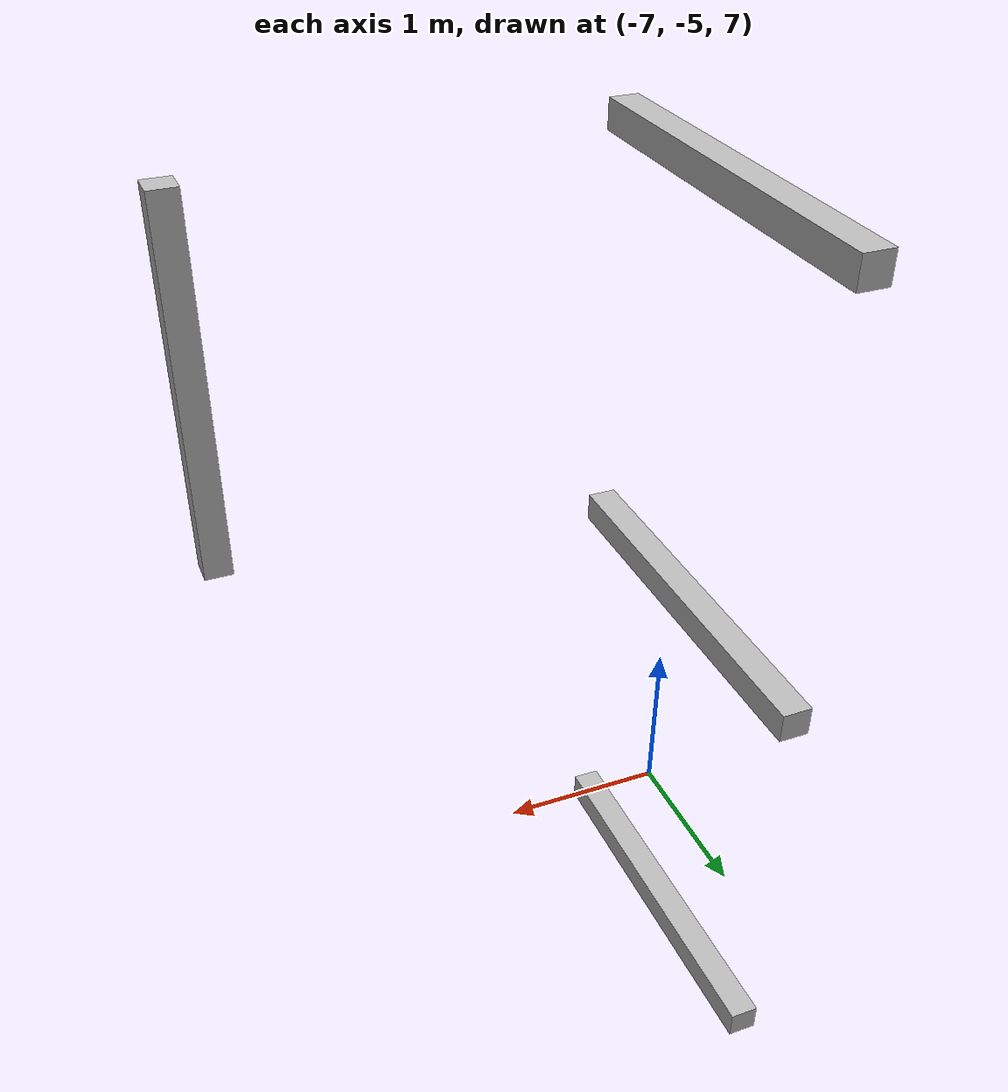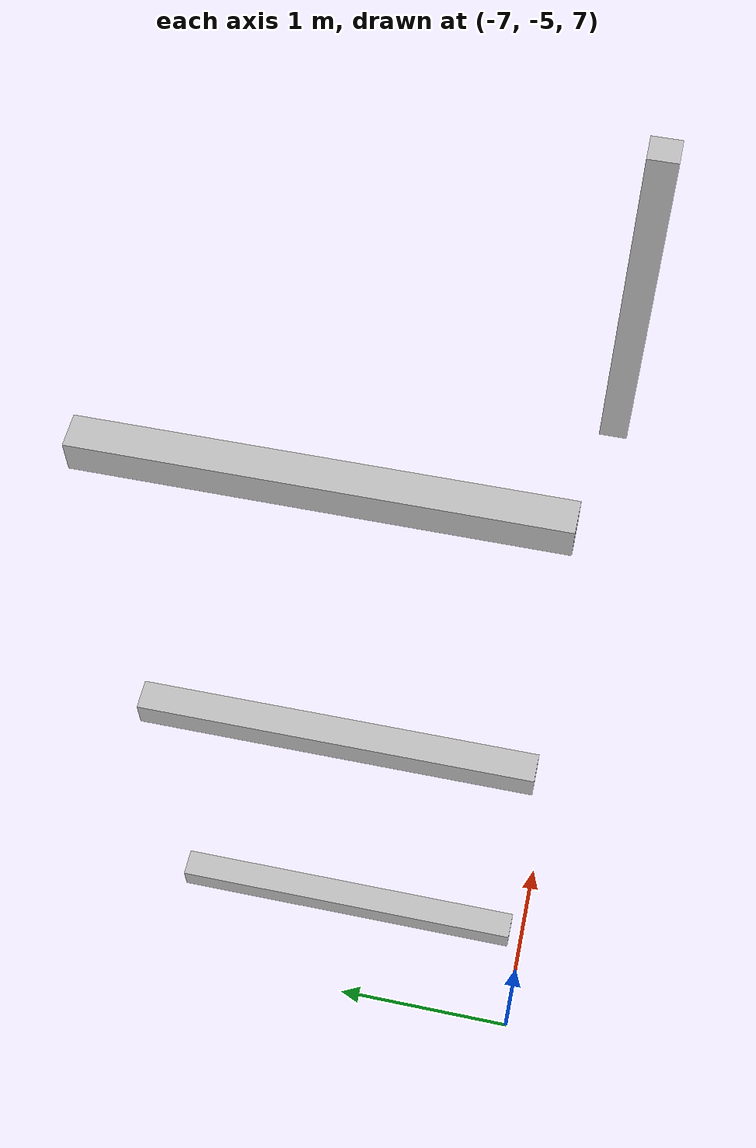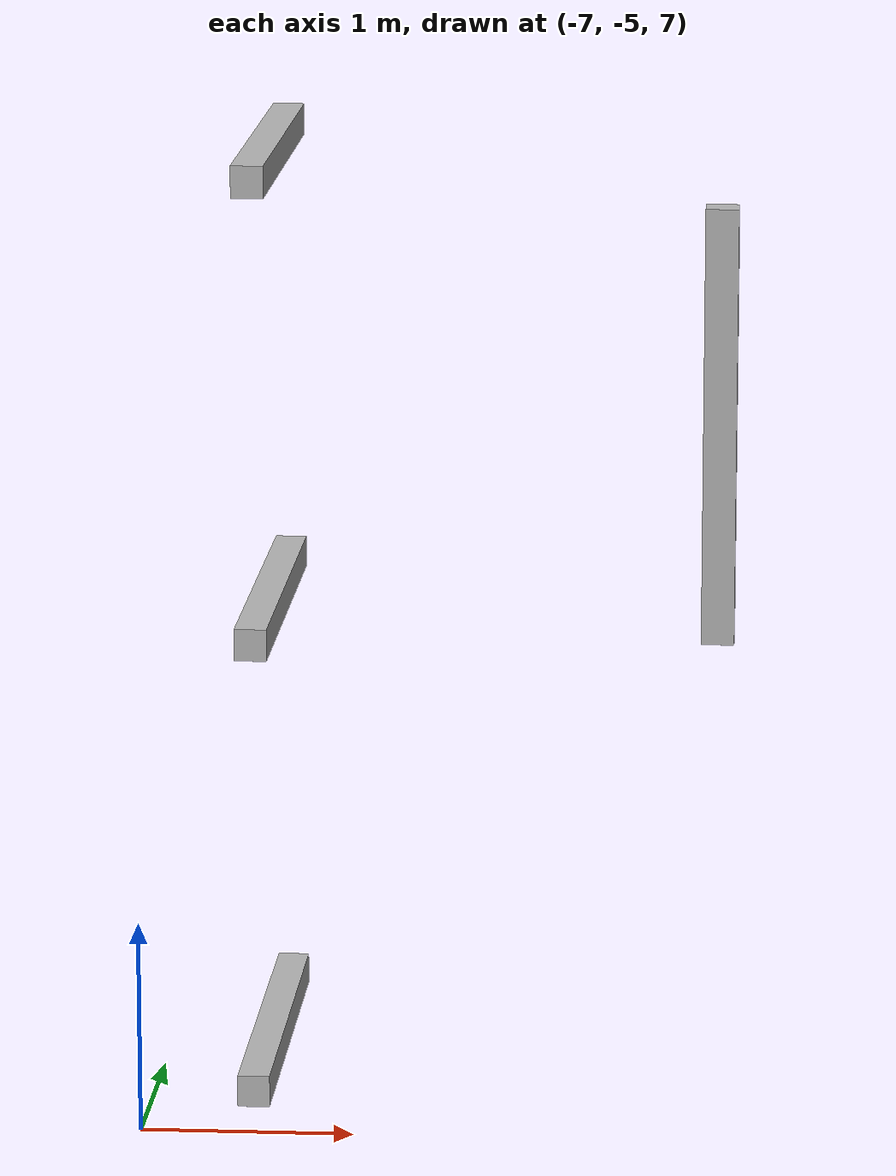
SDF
<sdf version="1.7">
 <world name="default">
  <model name="orthogonal_747_2.000.15_TS">
   <static>1</static>
   <link name="y_link_4_0_0">
    <inertial>
     <mass>1</mass>
     <inertia>
      <ixx>0.166667</ixx>
      <ixy>0</ixy>
      <ixz>0</ixz>
      <iyy>0.166667</iyy>
      <iyz>0</iyz>
      <izz>0.166667</izz>
     </inertia>
    </inertial>
    <pose>0 1.075 9.675 0 -0 0</pose>
    <visual name="visual_0">
     <laser_retro>3466</laser_retro>
     <geometry><box><size>0.15 1e-06 0.15</size></box></geometry>
     <material>
      <script><name>Gazebo/Grey</name><uri>file://media/materials/scripts/gazebo.material</uri></script>
      <shader type="pixel"><normal_map>__default__</normal_map></shader>
      <ambient>0.678 0.498 0.659 1</ambient>
      <diffuse>0.7 0.7 0.7 1</diffuse>
      <specular>0.01 0.01 0.01 1</specular>
      <emissive>0 0 0 1</emissive>
     </material>
     <pose>0 -1 0 0 -0 0</pose>
     <transparency>1</transparency>
    </visual>
    <visual name="visual_1">
     <laser_retro>3467</laser_retro>
     <geometry><box><size>0.15 1e-06 0.15</size></box></geometry>
     <material>
      <script><name>Gazebo/Grey</name><uri>file://media/materials/scripts/gazebo.material</uri></script>
      <shader type="pixel"><normal_map>__default__</normal_map></shader>
      <ambient>0.447 0.624 0.812 1</ambient>
      <diffuse>0.7 0.7 0.7 1</diffuse>
      <specular>0.01 0.01 0.01 1</specular>
      <emissive>0 0 0 1</emissive>
     </material>
     <pose>0 1 0 0 -0 0</pose>
     <transparency>1</transparency>
    </visual>
    <visual name="visual_2">
     <laser_retro>3468</laser_retro>
     <geometry><box><size>0.15 2 1e-06</size></box></geometry>
     <material>
      <script><name>Gazebo/Grey</name><uri>file://media/materials/scripts/gazebo.material</uri></script>
      <shader type="pixel"><normal_map>__default__</normal_map></shader>
      <ambient>0.988 0.686 0.243 1</ambient>
      <diffuse>0.7 0.7 0.7 1</diffuse>
      <specular>0.01 0.01 0.01 1</specular>
      <emissive>0 0 0 1</emissive>
     </material>
     <pose>0 0 -0.075 0 -0 0</pose>
     <transparency>1</transparency>
    </visual>
    <visual name="visual_3">
     <laser_retro>3469</laser_retro>
     <geometry><box><size>1e-06 2 0.15</size></box></geometry>
     <material>
      <script><name>Gazebo/Grey</name><uri>file://media/materials/scripts/gazebo.material</uri></script>
      <shader type="pixel"><normal_map>__default__</normal_map></shader>
      <ambient>0.988 0.914 0.31 1</ambient>
      <diffuse>0.7 0.7 0.7 1</diffuse>
      <specular>0.01 0.01 0.01 1</specular>
      <emissive>0 0 0 1</emissive>
     </material>
     <pose>0.075 0 0 0 -0 0</pose>
     <transparency>1</transparency>
    </visual>
    <visual name="visual_4">
     <laser_retro>3470</laser_retro>
     <geometry><box><size>0.15 2 1e-06</size></box></geometry>
     <material>
      <script><name>Gazebo/Grey</name><uri>file://media/materials/scripts/gazebo.material</uri></script>
      <shader type="pixel"><normal_map>__default__</normal_map></shader>
      <ambient>0.937 0.161 0.161 1</ambient>
      <diffuse>0.7 0.7 0.7 1</diffuse>
      <specular>0.01 0.01 0.01 1</specular>
      <emissive>0 0 0 1</emissive>
     </material>
     <pose>0 0 0.075 0 -0 0</pose>
     <transparency>1</transparency>
    </visual>
    <visual name="visual_5">
     <laser_retro>3471</laser_retro>
     <geometry><box><size>1e-06 2 0.15</size></box></geometry>
     <material>
      <script><name>Gazebo/Grey</name><uri>file://media/materials/scripts/gazebo.material</uri></script>
      <shader type="pixel"><normal_map>__default__</normal_map></shader>
      <ambient>0.541 0.886 0.204 1</ambient>
      <diffuse>0.7 0.7 0.7 1</diffuse>
      <specular>0.01 0.01 0.01 1</specular>
      <emissive>0 0 0 1</emissive>
     </material>
     <pose>-0.075 0 0 0 -0 0</pose>
     <transparency>1</transparency>
    </visual>
    <visual name="visual_texture">
     <geometry><box><size>0.149985 1.9998 0.149985</size></box></geometry>
     <material>
      <script>
       <uri>model://BASE_MODELS/simple_block_v2_textured/materials/scripts</uri>
       <uri>model://BASE_MODELS/simple_block_v2_textured/materials/textures</uri>
       <name>metal</name>
      </script>
     </material>
     <laser_retro>3472</laser_retro>
    </visual>
    <collision name="collision">
     <geometry><box><size>0.15 2 0.15</size></box></geometry>
     <surface>
      <friction>
       <ode><mu>1</mu><mu2>1</mu2><fdir1>0 0 0</fdir1><slip1>0</slip1><slip2>0</slip2></ode>
       <torsional>
        <coefficient>1</coefficient>
        <patch_radius>0</patch_radius>
        <surface_radius>0</surface_radius>
        <use_patch_radius>1</use_patch_radius>
        <ode><slip>0</slip></ode>
       </torsional>
      </friction>
      <bounce><restitution_coefficient>0</restitution_coefficient><threshold>1e+06</threshold></bounce>
      <contact>
       <collide_without_contact>0</collide_without_contact>
       <collide_without_contact_bitmask>1</collide_without_contact_bitmask>
       <collide_bitmask>1</collide_bitmask>
       <ode>
        <soft_cfm>0</soft_cfm>
        <soft_erp>0.2</soft_erp>
        <kp>1e+13</kp>
        <kd>1</kd>
        <max_vel>0.01</max_vel>
        <min_depth>0</min_depth>
       </ode>
       <bullet>
        <split_impulse>1</split_impulse>
        <split_impulse_penetration_threshold>-0.01</split_impulse_penetration_threshold>
        <soft_cfm>0</soft_cfm>
        <soft_erp>0.2</soft_erp>
        <kp>1e+13</kp>
        <kd>1</kd>
       </bullet>
      </contact>
     </surface>
    </collision>
   </link>
   <link name="y_link_5_0_0">
    <inertial>
     <mass>1</mass>
     <inertia>
      <ixx>0.166667</ixx>
      <ixy>0</ixy>
      <ixz>0</ixz>
      <iyy>0.166667</iyy>
      <iyz>0</iyz>
      <izz>0.166667</izz>
     </inertia>
    </inertial>
    <pose>0 1.075 11.825 0 -0 0</pose>
    <visual name="visual_0">
     <laser_retro>4369</laser_retro>
     <geometry><box><size>0.15 1e-06 0.15</size></box></geometry>
     <material>
      <script><name>Gazebo/Grey</name><uri>file://media/materials/scripts/gazebo.material</uri></script>
      <shader type="pixel"><normal_map>__default__</normal_map></shader>
      <ambient>0.678 0.498 0.659 1</ambient>
      <diffuse>0.7 0.7 0.7 1</diffuse>
      <specular>0.01 0.01 0.01 1</specular>
      <emissive>0 0 0 1</emissive>
     </material>
     <pose>0 -1 0 0 -0 0</pose>
     <transparency>1</transparency>
    </visual>
    <visual name="visual_1">
     <laser_retro>4370</laser_retro>
     <geometry><box><size>0.15 1e-06 0.15</size></box></geometry>
     <material>
      <script><name>Gazebo/Grey</name><uri>file://media/materials/scripts/gazebo.material</uri></script>
      <shader type="pixel"><normal_map>__default__</normal_map></shader>
      <ambient>0.447 0.624 0.812 1</ambient>
      <diffuse>0.7 0.7 0.7 1</diffuse>
      <specular>0.01 0.01 0.01 1</specular>
      <emissive>0 0 0 1</emissive>
     </material>
     <pose>0 1 0 0 -0 0</pose>
     <transparency>1</transparency>
    </visual>
    <visual name="visual_2">
     <laser_retro>4371</laser_retro>
     <geometry><box><size>0.15 2 1e-06</size></box></geometry>
     <material>
      <script><name>Gazebo/Grey</name><uri>file://media/materials/scripts/gazebo.material</uri></script>
      <shader type="pixel"><normal_map>__default__</normal_map></shader>
      <ambient>0.988 0.686 0.243 1</ambient>
      <diffuse>0.7 0.7 0.7 1</diffuse>
      <specular>0.01 0.01 0.01 1</specular>
      <emissive>0 0 0 1</emissive>
     </material>
     <pose>0 0 -0.075 0 -0 0</pose>
     <transparency>1</transparency>
    </visual>
    <visual name="visual_3">
     <laser_retro>4372</laser_retro>
     <geometry><box><size>1e-06 2 0.15</size></box></geometry>
     <material>
      <script><name>Gazebo/Grey</name><uri>file://media/materials/scripts/gazebo.material</uri></script>
      <shader type="pixel"><normal_map>__default__</normal_map></shader>
      <ambient>0.988 0.914 0.31 1</ambient>
      <diffuse>0.7 0.7 0.7 1</diffuse>
      <specular>0.01 0.01 0.01 1</specular>
      <emissive>0 0 0 1</emissive>
     </material>
     <pose>0.075 0 0 0 -0 0</pose>
     <transparency>1</transparency>
    </visual>
    <visual name="visual_4">
     <laser_retro>4373</laser_retro>
     <geometry><box><size>0.15 2 1e-06</size></box></geometry>
     <material>
      <script><name>Gazebo/Grey</name><uri>file://media/materials/scripts/gazebo.material</uri></script>
      <shader type="pixel"><normal_map>__default__</normal_map></shader>
      <ambient>0.937 0.161 0.161 1</ambient>
      <diffuse>0.7 0.7 0.7 1</diffuse>
      <specular>0.01 0.01 0.01 1</specular>
      <emissive>0 0 0 1</emissive>
     </material>
     <pose>0 0 0.075 0 -0 0</pose>
     <transparency>1</transparency>
    </visual>
    <visual name="visual_5">
     <laser_retro>4374</laser_retro>
     <geometry><box><size>1e-06 2 0.15</size></box></geometry>
     <material>
      <script><name>Gazebo/Grey</name><uri>file://media/materials/scripts/gazebo.material</uri></script>
      <shader type="pixel"><normal_map>__default__</normal_map></shader>
      <ambient>0.541 0.886 0.204 1</ambient>
      <diffuse>0.7 0.7 0.7 1</diffuse>
      <specular>0.01 0.01 0.01 1</specular>
      <emissive>0 0 0 1</emissive>
     </material>
     <pose>-0.075 0 0 0 -0 0</pose>
     <transparency>1</transparency>
    </visual>
    <visual name="visual_texture">
     <geometry><box><size>0.149985 1.9998 0.149985</size></box></geometry>
     <material>
      <script>
       <uri>model://BASE_MODELS/simple_block_v2_textured/materials/scripts</uri>
       <uri>model://BASE_MODELS/simple_block_v2_textured/materials/textures</uri>
       <name>metal</name>
      </script>
     </material>
     <laser_retro>4375</laser_retro>
    </visual>
    <collision name="collision">
     <geometry><box><size>0.15 2 0.15</size></box></geometry>
     <surface>
      <friction>
       <ode><mu>1</mu><mu2>1</mu2><fdir1>0 0 0</fdir1><slip1>0</slip1><slip2>0</slip2></ode>
       <torsional>
        <coefficient>1</coefficient>
        <patch_radius>0</patch_radius>
        <surface_radius>0</surface_radius>
        <use_patch_radius>1</use_patch_radius>
        <ode><slip>0</slip></ode>
       </torsional>
      </friction>
      <bounce><restitution_coefficient>0</restitution_coefficient><threshold>1e+06</threshold></bounce>
      <contact>
       <collide_without_contact>0</collide_without_contact>
       <collide_without_contact_bitmask>1</collide_without_contact_bitmask>
       <collide_bitmask>1</collide_bitmask>
       <ode>
        <soft_cfm>0</soft_cfm>
        <soft_erp>0.2</soft_erp>
        <kp>1e+13</kp>
        <kd>1</kd>
        <max_vel>0.01</max_vel>
        <min_depth>0</min_depth>
       </ode>
       <bullet>
        <split_impulse>1</split_impulse>
        <split_impulse_penetration_threshold>-0.01</split_impulse_penetration_threshold>
        <soft_cfm>0</soft_cfm>
        <soft_erp>0.2</soft_erp>
        <kp>1e+13</kp>
        <kd>1</kd>
       </bullet>
      </contact>
     </surface>
    </collision>
   </link>
   <link name="y_link_6_0_0">
    <inertial>
     <mass>1</mass>
     <inertia>
      <ixx>0.166667</ixx>
      <ixy>0</ixy>
      <ixz>0</ixz>
      <iyy>0.166667</iyy>
      <iyz>0</iyz>
      <izz>0.166667</izz>
     </inertia>
    </inertial>
    <pose>0 1.075 13.975 0 -0 0</pose>
    <visual name="visual_0">
     <laser_retro>5272</laser_retro>
     <geometry><box><size>0.15 1e-06 0.15</size></box></geometry>
     <material>
      <script><name>Gazebo/Grey</name><uri>file://media/materials/scripts/gazebo.material</uri></script>
      <shader type="pixel"><normal_map>__default__</normal_map></shader>
      <ambient>0.678 0.498 0.659 1</ambient>
      <diffuse>0.7 0.7 0.7 1</diffuse>
      <specular>0.01 0.01 0.01 1</specular>
      <emissive>0 0 0 1</emissive>
     </material>
     <pose>0 -1 0 0 -0 0</pose>
     <transparency>1</transparency>
    </visual>
    <visual name="visual_1">
     <laser_retro>5273</laser_retro>
     <geometry><box><size>0.15 1e-06 0.15</size></box></geometry>
     <material>
      <script><name>Gazebo/Grey</name><uri>file://media/materials/scripts/gazebo.material</uri></script>
      <shader type="pixel"><normal_map>__default__</normal_map></shader>
      <ambient>0.447 0.624 0.812 1</ambient>
      <diffuse>0.7 0.7 0.7 1</diffuse>
      <specular>0.01 0.01 0.01 1</specular>
      <emissive>0 0 0 1</emissive>
     </material>
     <pose>0 1 0 0 -0 0</pose>
     <transparency>1</transparency>
    </visual>
    <visual name="visual_2">
     <laser_retro>5274</laser_retro>
     <geometry><box><size>0.15 2 1e-06</size></box></geometry>
     <material>
      <script><name>Gazebo/Grey</name><uri>file://media/materials/scripts/gazebo.material</uri></script>
      <shader type="pixel"><normal_map>__default__</normal_map></shader>
      <ambient>0.988 0.686 0.243 1</ambient>
      <diffuse>0.7 0.7 0.7 1</diffuse>
      <specular>0.01 0.01 0.01 1</specular>
      <emissive>0 0 0 1</emissive>
     </material>
     <pose>0 0 -0.075 0 -0 0</pose>
     <transparency>1</transparency>
    </visual>
    <visual name="visual_3">
     <laser_retro>5275</laser_retro>
     <geometry><box><size>1e-06 2 0.15</size></box></geometry>
     <material>
      <script><name>Gazebo/Grey</name><uri>file://media/materials/scripts/gazebo.material</uri></script>
      <shader type="pixel"><normal_map>__default__</normal_map></shader>
      <ambient>0.988 0.914 0.31 1</ambient>
      <diffuse>0.7 0.7 0.7 1</diffuse>
      <specular>0.01 0.01 0.01 1</specular>
      <emissive>0 0 0 1</emissive>
     </material>
     <pose>0.075 0 0 0 -0 0</pose>
     <transparency>1</transparency>
    </visual>
    <visual name="visual_4">
     <laser_retro>5276</laser_retro>
     <geometry><box><size>0.15 2 1e-06</size></box></geometry>
     <material>
      <script><name>Gazebo/Grey</name><uri>file://media/materials/scripts/gazebo.material</uri></script>
      <shader type="pixel"><normal_map>__default__</normal_map></shader>
      <ambient>0.937 0.161 0.161 1</ambient>
      <diffuse>0.7 0.7 0.7 1</diffuse>
      <specular>0.01 0.01 0.01 1</specular>
      <emissive>0 0 0 1</emissive>
     </material>
     <pose>0 0 0.075 0 -0 0</pose>
     <transparency>1</transparency>
    </visual>
    <visual name="visual_5">
     <laser_retro>5277</laser_retro>
     <geometry><box><size>1e-06 2 0.15</size></box></geometry>
     <material>
      <script><name>Gazebo/Grey</name><uri>file://media/materials/scripts/gazebo.material</uri></script>
      <shader type="pixel"><normal_map>__default__</normal_map></shader>
      <ambient>0.541 0.886 0.204 1</ambient>
      <diffuse>0.7 0.7 0.7 1</diffuse>
      <specular>0.01 0.01 0.01 1</specular>
      <emissive>0 0 0 1</emissive>
     </material>
     <pose>-0.075 0 0 0 -0 0</pose>
     <transparency>1</transparency>
    </visual>
    <visual name="visual_texture">
     <geometry><box><size>0.149985 1.9998 0.149985</size></box></geometry>
     <material>
      <script>
       <uri>model://BASE_MODELS/simple_block_v2_textured/materials/scripts</uri>
       <uri>model://BASE_MODELS/simple_block_v2_textured/materials/textures</uri>
       <name>metal</name>
      </script>
     </material>
     <laser_retro>5278</laser_retro>
    </visual>
    <collision name="collision">
     <geometry><box><size>0.15 2 0.15</size></box></geometry>
     <surface>
      <friction>
       <ode><mu>1</mu><mu2>1</mu2><fdir1>0 0 0</fdir1><slip1>0</slip1><slip2>0</slip2></ode>
       <torsional>
        <coefficient>1</coefficient>
        <patch_radius>0</patch_radius>
        <surface_radius>0</surface_radius>
        <use_patch_radius>1</use_patch_radius>
        <ode><slip>0</slip></ode>
       </torsional>
      </friction>
      <bounce><restitution_coefficient>0</restitution_coefficient><threshold>1e+06</threshold></bounce>
      <contact>
       <collide_without_contact>0</collide_without_contact>
       <collide_without_contact_bitmask>1</collide_without_contact_bitmask>
       <collide_bitmask>1</collide_bitmask>
       <ode>
        <soft_cfm>0</soft_cfm>
        <soft_erp>0.2</soft_erp>
        <kp>1e+13</kp>
        <kd>1</kd>
        <max_vel>0.01</max_vel>
        <min_depth>0</min_depth>
       </ode>
       <bullet>
        <split_impulse>1</split_impulse>
        <split_impulse_penetration_threshold>-0.01</split_impulse_penetration_threshold>
        <soft_cfm>0</soft_cfm>
        <soft_erp>0.2</soft_erp>
        <kp>1e+13</kp>
        <kd>1</kd>
       </bullet>
      </contact>
     </surface>
    </collision>
   </link>
   <link name="z_link_6_0_1">
    <inertial>
     <mass>1</mass>
     <inertia>
      <ixx>0.166667</ixx>
      <ixy>0</ixy>
      <ixz>0</ixz>
      <iyy>0.166667</iyy>
      <iyz>0</iyz>
      <izz>0.166667</izz>
     </inertia>
    </inertial>
    <pose>2.15 0 12.9 0 -0 0</pose>
    <visual name="visual_0">
     <laser_retro>5314</laser_retro>
     <geometry><box><size>0.15 1e-06 2</size></box></geometry>
     <material>
      <script><name>Gazebo/Grey</name><uri>file://media/materials/scripts/gazebo.material</uri></script>
      <shader type="pixel"><normal_map>__default__</normal_map></shader>
      <ambient>0.678 0.498 0.659 1</ambient>
      <diffuse>0.7 0.7 0.7 1</diffuse>
      <specular>0.01 0.01 0.01 1</specular>
      <emissive>0 0 0 1</emissive>
     </material>
     <pose>0 -0.075 0 0 -0 0</pose>
     <transparency>1</transparency>
    </visual>
    <visual name="visual_1">
     <laser_retro>5315</laser_retro>
     <geometry><box><size>0.15 1e-06 2</size></box></geometry>
     <material>
      <script><name>Gazebo/Grey</name><uri>file://media/materials/scripts/gazebo.material</uri></script>
      <shader type="pixel"><normal_map>__default__</normal_map></shader>
      <ambient>0.447 0.624 0.812 1</ambient>
      <diffuse>0.7 0.7 0.7 1</diffuse>
      <specular>0.01 0.01 0.01 1</specular>
      <emissive>0 0 0 1</emissive>
     </material>
     <pose>0 0.075 0 0 -0 0</pose>
     <transparency>1</transparency>
    </visual>
    <visual name="visual_2">
     <laser_retro>5316</laser_retro>
     <geometry><box><size>0.15 0.15 1e-06</size></box></geometry>
     <material>
      <script><name>Gazebo/Grey</name><uri>file://media/materials/scripts/gazebo.material</uri></script>
      <shader type="pixel"><normal_map>__default__</normal_map></shader>
      <ambient>0.988 0.686 0.243 1</ambient>
      <diffuse>0.7 0.7 0.7 1</diffuse>
      <specular>0.01 0.01 0.01 1</specular>
      <emissive>0 0 0 1</emissive>
     </material>
     <pose>0 0 -1 0 -0 0</pose>
     <transparency>1</transparency>
    </visual>
    <visual name="visual_3">
     <laser_retro>5317</laser_retro>
     <geometry><box><size>1e-06 0.15 2</size></box></geometry>
     <material>
      <script><name>Gazebo/Grey</name><uri>file://media/materials/scripts/gazebo.material</uri></script>
      <shader type="pixel"><normal_map>__default__</normal_map></shader>
      <ambient>0.988 0.914 0.31 1</ambient>
      <diffuse>0.7 0.7 0.7 1</diffuse>
      <specular>0.01 0.01 0.01 1</specular>
      <emissive>0 0 0 1</emissive>
     </material>
     <pose>0.075 0 0 0 -0 0</pose>
     <transparency>1</transparency>
    </visual>
    <visual name="visual_4">
     <laser_retro>5318</laser_retro>
     <geometry><box><size>0.15 0.15 1e-06</size></box></geometry>
     <material>
      <script><name>Gazebo/Grey</name><uri>file://media/materials/scripts/gazebo.material</uri></script>
      <shader type="pixel"><normal_map>__default__</normal_map></shader>
      <ambient>0.937 0.161 0.161 1</ambient>
      <diffuse>0.7 0.7 0.7 1</diffuse>
      <specular>0.01 0.01 0.01 1</specular>
      <emissive>0 0 0 1</emissive>
     </material>
     <pose>0 0 1 0 -0 0</pose>
     <transparency>1</transparency>
    </visual>
    <visual name="visual_5">
     <laser_retro>5319</laser_retro>
     <geometry><box><size>1e-06 0.15 2</size></box></geometry>
     <material>
      <script><name>Gazebo/Grey</name><uri>file://media/materials/scripts/gazebo.material</uri></script>
      <shader type="pixel"><normal_map>__default__</normal_map></shader>
      <ambient>0.541 0.886 0.204 1</ambient>
      <diffuse>0.7 0.7 0.7 1</diffuse>
      <specular>0.01 0.01 0.01 1</specular>
      <emissive>0 0 0 1</emissive>
     </material>
     <pose>-0.075 0 0 0 -0 0</pose>
     <transparency>1</transparency>
    </visual>
    <visual name="visual_texture">
     <geometry><box><size>0.149985 0.149985 1.9998</size></box></geometry>
     <material>
      <script>
       <uri>model://BASE_MODELS/simple_block_v2_textured/materials/scripts</uri>
       <uri>model://BASE_MODELS/simple_block_v2_textured/materials/textures</uri>
       <name>metal</name>
      </script>
     </material>
     <laser_retro>5320</laser_retro>
    </visual>
    <collision name="collision">
     <geometry><box><size>0.15 0.15 2</size></box></geometry>
     <surface>
      <friction>
       <ode><mu>1</mu><mu2>1</mu2><fdir1>0 0 0</fdir1><slip1>0</slip1><slip2>0</slip2></ode>
       <torsional>
        <coefficient>1</coefficient>
        <patch_radius>0</patch_radius>
        <surface_radius>0</surface_radius>
        <use_patch_radius>1</use_patch_radius>
        <ode><slip>0</slip></ode>
       </torsional>
      </friction>
      <bounce><restitution_coefficient>0</restitution_coefficient><threshold>1e+06</threshold></bounce>
      <contact>
       <collide_without_contact>0</collide_without_contact>
       <collide_without_contact_bitmask>1</collide_without_contact_bitmask>
       <collide_bitmask>1</collide_bitmask>
       <ode>
        <soft_cfm>0</soft_cfm>
        <soft_erp>0.2</soft_erp>
        <kp>1e+13</kp>
        <kd>1</kd>
        <max_vel>0.01</max_vel>
        <min_depth>0</min_depth>
       </ode>
       <bullet>
        <split_impulse>1</split_impulse>
        <split_impulse_penetration_threshold>-0.01</split_impulse_penetration_threshold>
        <soft_cfm>0</soft_cfm>
        <soft_erp>0.2</soft_erp>
        <kp>1e+13</kp>
        <kd>1</kd>
       </bullet>
      </contact>
     </surface>
    </collision>
   </link>
   <pose>-6.47624 -5 -2.5 0 -0 0</pose>
  </model>
 </world>
</sdf>
